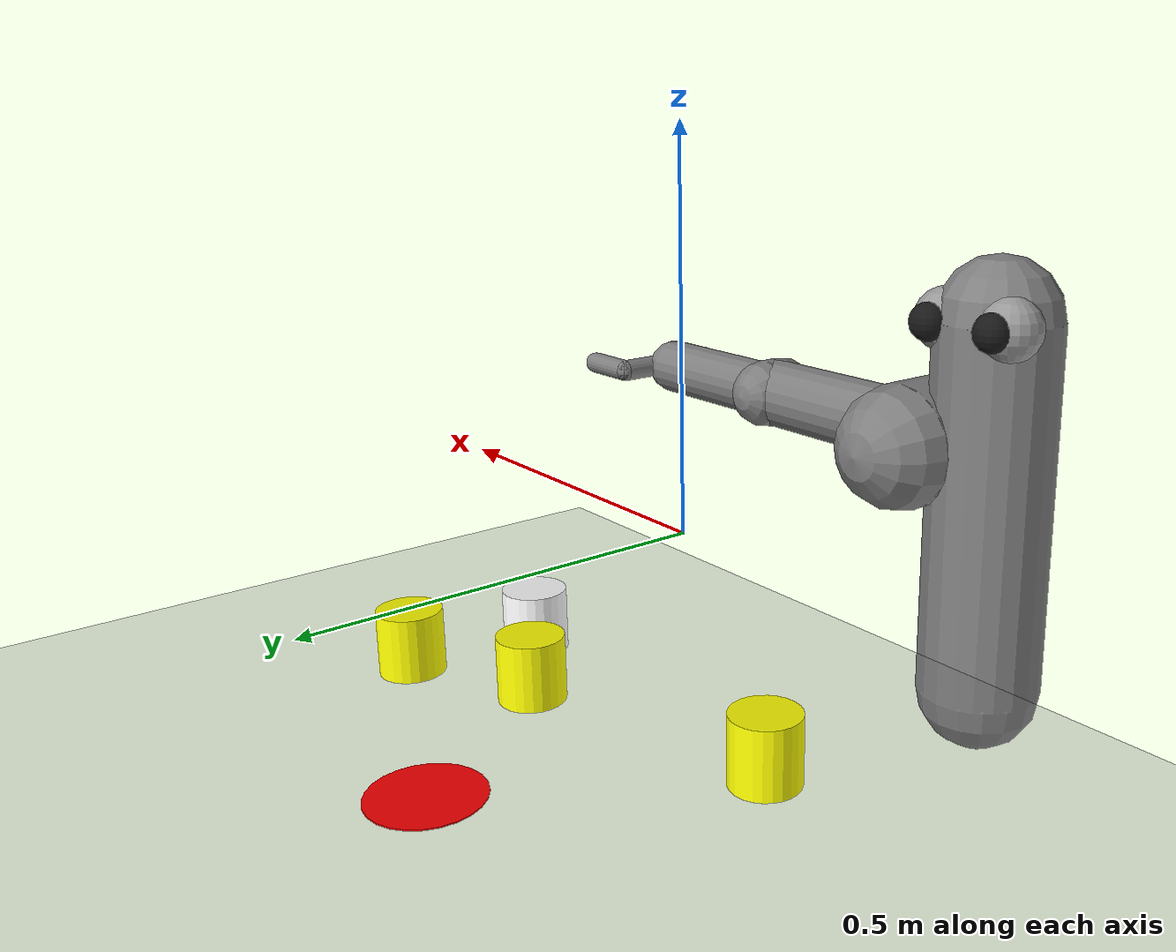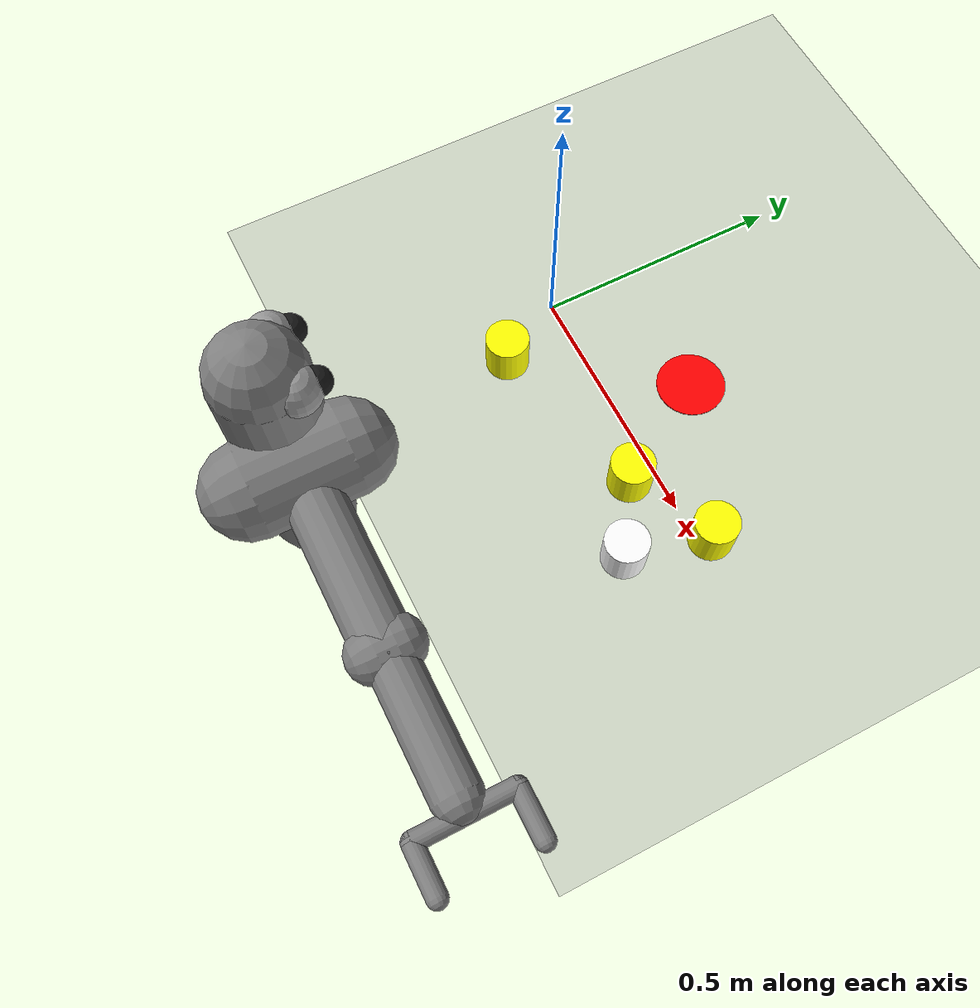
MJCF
<mujoco model="arm3d">
  <compiler inertiafromgeom="true" angle="radian" coordinate="local"/>
  <option timestep="0.01" gravity="0 0 0" iterations="20" integrator="Euler" />

  <default>
    <joint armature='0.04' damping="1" limited="true"/>
    <geom friction=".8 .1 .1" density="300" margin="0.002" condim="1" contype="1" conaffinity="1"/>
  </default>

  <worldbody>
    <light diffuse=".5 .5 .5" pos="0 0 3" dir="0 0 -1"/>
    <geom name="table" type="plane" pos="0 0.5 -0.325" size="1 1 0.1" contype="1" conaffinity="1"/>

    <body name="r_shoulder_pan_link" pos="0 -0.6 0">
      <geom name="e1" type="sphere" rgba="0.6 0.6 0.6 1" pos="-0.06 0.05 0.2" size="0.05" contype="1" conaffinity="1"/>
      <geom name="e2" type="sphere" rgba="0.6 0.6 0.6 1" pos=" 0.06 0.05 0.2" size="0.05" contype="1" conaffinity="1"/>
      <geom name="e1p" type="sphere" rgba="0.1 0.1 0.1 1" pos="-0.06 0.09 0.2" size="0.03" contype="1" conaffinity="1"/>
      <geom name="e2p" type="sphere" rgba="0.1 0.1 0.1 1" pos=" 0.06 0.09 0.2" size="0.03" contype="1" conaffinity="1"/>
      <geom name="sp" type="capsule" fromto="0 0 -0.4 0 0 0.2" size="0.1" contype="1" conaffinity="1"/>
      <joint name="r_shoulder_pan_joint" type="hinge" pos="0 0 0" axis="0 0 1" range="-2.2854 1.714602" damping="1.0" />

      <body name="r_shoulder_lift_link" pos="0.1 0 0">
        <geom name="sl" type="capsule" fromto="0 -0.1 0 0 0.1 0" size="0.1" contype="0" conaffinity="0"/>
        <joint name="r_shoulder_lift_joint" type="hinge" pos="0 0 0" axis="0 1 0" range="-0.5236 1.3963" damping="1.0" />

        <body name="r_upper_arm_roll_link" pos="0 0 0">
          <geom name="uar" type="capsule" fromto="-0.1 0 0 0.1 0 0" size="0.02" contype="0" conaffinity="0"/>
          <joint name="r_upper_arm_roll_joint" type="hinge" pos="0 0 0" axis="1 0 0" range="-1.5 1.7" damping="0.1" />

          <body name="r_upper_arm_link" pos="0 0 0">
            <geom name="ua" type="capsule" fromto="0 0 0 0.4 0 0" size="0.06" contype="0" conaffinity="0"/>

            <body name="r_elbow_flex_link" pos="0.4 0 0">
              <geom name="ef" type="capsule" fromto="0 -0.02 0 0.0 0.02 0" size="0.06" contype="0" conaffinity="0"/>
              <joint name="r_elbow_flex_joint" type="hinge" pos="0 0 0" axis="0 1 0" range="-2.3213 0" damping="0.1" />

              <body name="r_forearm_roll_link" pos="0 0 0">
                <geom name="fr" type="capsule" fromto="-0.1 0 0 0.1 0 0" size="0.02" contype="1" conaffinity="0"/>
                <joint name="r_forearm_roll_joint" type="hinge" limited="true" pos="0 0 0" axis="1 0 0" damping=".1" range="-1.5 1.5"/>

                <body name="r_forearm_link" pos="0 0 0">
                  <geom name="fa" type="capsule" fromto="0 0 0 0.291 0 0" size="0.05" contype="0" conaffinity="1" density="300" />

                  <body name="r_wrist_flex_link" pos="0.321 0 0">
                    <geom name="wf" type="capsule" fromto="0 -0.02 0 0 0.02 0" size="0.01" contype="0" conaffinity="0"/>
                    <joint name="r_wrist_flex_joint" type="hinge" pos="0 0 0" axis="0 1 0" range="-1.094 0" damping=".1" />

                    <body name="r_wrist_roll_link" pos="0 0 0">
                      <joint name="r_wrist_roll_joint" type="hinge" pos="0 0 0" limited="true" axis="1 0 0" damping="0.1" range="-1.5 1.5"/>
                      <body name="tips_arm" pos="0 0 0">
                        <geom name="tip_arml" type="sphere" pos="0.1 -0.1 0." size="0.01" contype="0" conaffinity="0"/>
                        <geom name="tip_armr" type="sphere" pos="0.1 0.1 0." size="0.01" contype="0" conaffinity="0"/>
                      </body>
                      <geom type="capsule" fromto="0 -0.1 0. 0.0 +0.1 0" size="0.02" contype="1" conaffinity="1"/>
                      <geom type="capsule" fromto="0 -0.1 0. 0.1 -0.1 0" size="0.02" contype="1" conaffinity="1"/>
                      <geom type="capsule" fromto="0 +0.1 0. 0.1 +0.1 0." size="0.02" contype="1" conaffinity="1"/>
                    </body>
                  </body>
                </body>
              </body>
            </body>
          </body>
        </body>
      </body>
    </body>

    <body name="object" pos="0.45 -0.05 -0.275" >
      <geom rgba="1 1 1 0" type="sphere" size="0.05 0.05 0.05" density="0.0001" conaffinity="0"/>
      <geom rgba="1 1 1 1" type="cylinder" size="0.05 0.05 0.05" density="0.0001" contype="1" conaffinity="0"/>
      <joint name="obj_slidey" type="slide" pos="0 0 0" axis="0 1 0" range="-10.3213 10.3" damping="0.5"/>
      <joint name="obj_slidex" type="slide" pos="0 0 0" axis="1 0 0" range="-10.3213 10.3" damping="0.5"/>
    </body>

    <!--  original pos=pos="0.15 0.3 -0.3230" -->
    <body name="goal" pos="0.15 0.3 -0.3230">
      <geom rgba="1 0 0 1" type="cylinder" size="0.08 0.001 0.1" density='0.00001' contype="0" conaffinity="0"/>
      <joint name="goal_slidey" type="slide" pos="0 0 0" axis="0 1 0" range="-10.3213 10.3" damping="0.5"/>
      <joint name="goal_slidex" type="slide" pos="0 0 0" axis="1 0 0" range="-10.3213 10.3" damping="0.5"/>
    </body>

    <!-- Aggiungi ostacoli fissi -->
    <!-- Add fixed obstacles with the same shape as the object -->
    <!-- training pos="-0.1 -0.05 -0.275" -->
    <body name="obstacle1" pos="-0.1 -0.05 -0.275">
    <geom name="obstacle1_geom" rgba="1 1 0 1" type="cylinder" size="0.05 0.05 0.05" density="0.00001" contype="1" conaffinity="1"/>
    </body>

    <!-- training pos="0.2 0.05 -0.275" -->
    <body name="obstacle2" pos="0.3 0.05 -0.275">
    <geom name="obstacle2_geom" rgba="1 1 0 1" type="cylinder" size="0.05 0.05 0.05" density="0.00001" contype="1" conaffinity="1"/>
    </body>

    <!-- training pos="0.5 0.14 -0.275" -->
    <body name="obstacle3" pos="0.5 0.14 -0.275">
      <geom name="obstacle3_geom" rgba="1 1 0 1" type="cylinder" size="0.05 0.05 0.05" density="0.00001" contype="1" conaffinity="1"/>
    </body>

  </worldbody>

  <actuator>
    <motor joint="r_shoulder_pan_joint" ctrlrange="-2.0 2.0" ctrllimited="true" />
    <motor joint="r_shoulder_lift_joint" ctrlrange="-2.0 2.0" ctrllimited="true" />
    <motor joint="r_upper_arm_roll_joint" ctrlrange="-2.0 2.0" ctrllimited="true" />
    <motor joint="r_elbow_flex_joint" ctrlrange="-2.0 2.0" ctrllimited="true" />
    <motor joint="r_forearm_roll_joint" ctrlrange="-2.0 2.0" ctrllimited="true" />
    <motor joint="r_wrist_flex_joint" ctrlrange="-2.0 2.0" ctrllimited="true" />
    <motor joint="r_wrist_roll_joint" ctrlrange="-2.0 2.0" ctrllimited="true"/>
  </actuator>
</mujoco>
